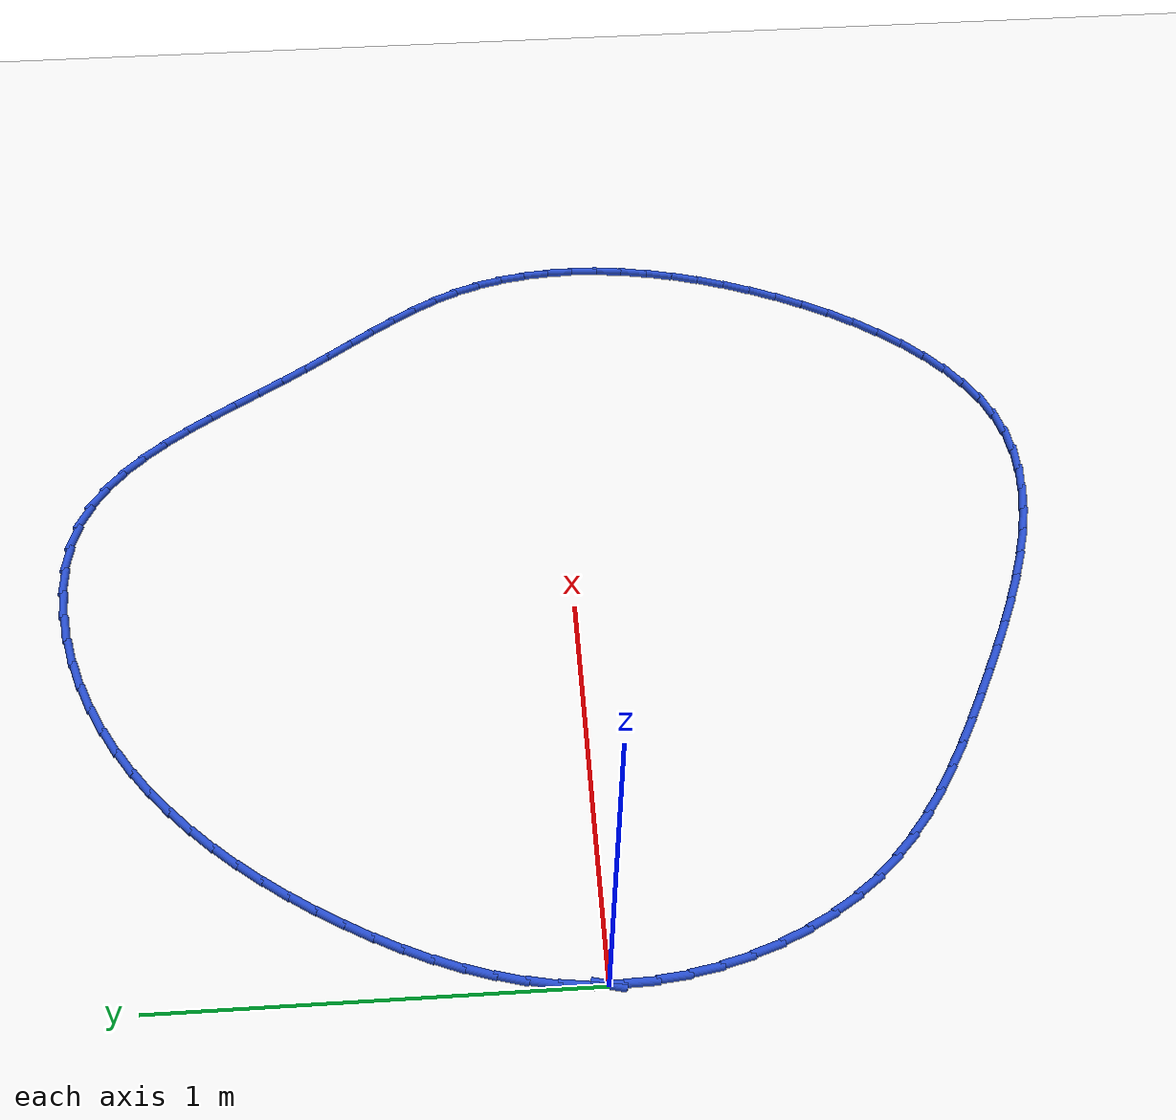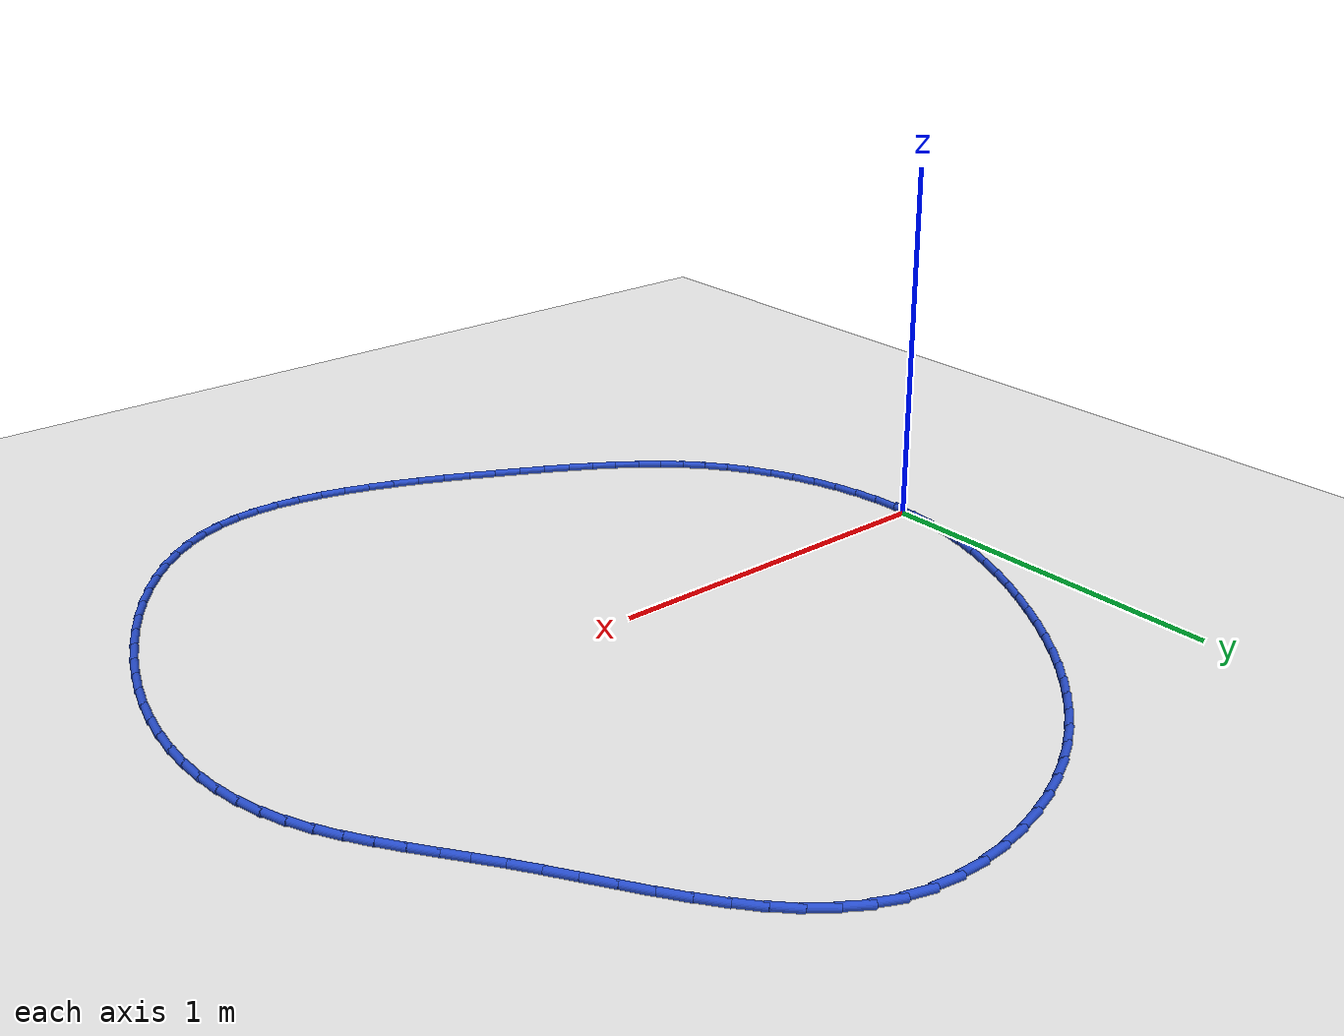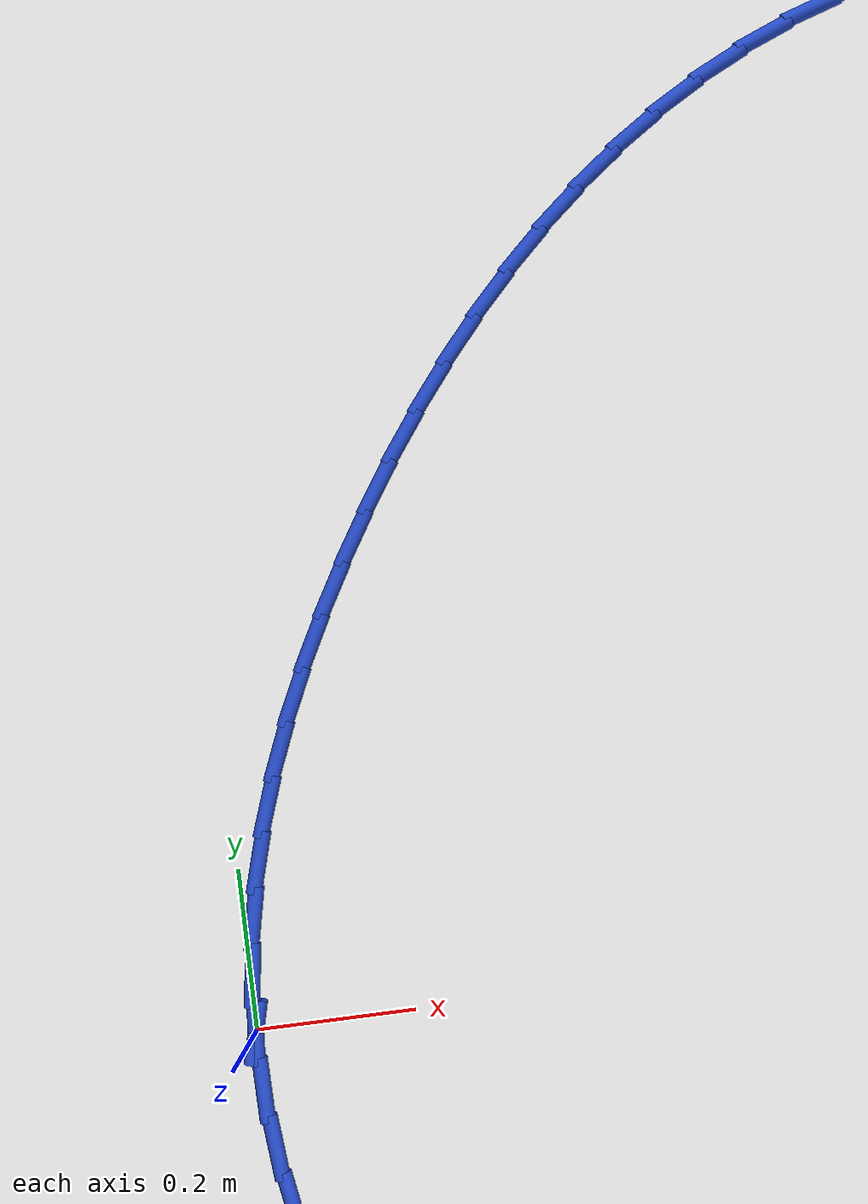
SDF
<sdf version="1.6">
 <world name="default">
  <light name="sun" type="directional">
   <pose>0 0 10 0 -0 0</pose>
   <diffuse>0.8 0.8 0.8 1</diffuse>
   <specular>0.2 0.2 0.2 1</specular>
   <attenuation>
    <range>1000</range>
    <constant>0.9</constant>
    <linear>0.01</linear>
    <quadratic>0.001</quadratic>
   </attenuation>
   <direction>-0.5 0.1 -0.9</direction>
  </light>
  <model name="ground_plane">
   <static>1</static>
   <link name="link">
    <collision name="collision">
     <geometry><plane><normal>0 0 1</normal><size>100 100</size></plane></geometry>
     <surface><friction><ode><mu>100</mu><mu2>50</mu2></ode></friction></surface>
    </collision>
    <visual name="visual">
     <cast_shadows>0</cast_shadows>
     <geometry><plane><normal>0 0 1</normal><size>100 100</size></plane></geometry>
     <material>
      <script><uri>file://media/materials/scripts/gazebo.material</uri><name>Gazebo/WhiteGlow</name></script>
     </material>
    </visual>
   </link>
  </model>
  <gravity>0 0 -9.8</gravity>
  <magnetic_field>6e-06 2.3e-05 -4.2e-05</magnetic_field>
  <atmosphere type="adiabatic"/>
  <physics name="default_physics" default="0" type="ode">
   <max_step_size>0.001</max_step_size>
   <real_time_factor>1</real_time_factor>
   <real_time_update_rate>1000</real_time_update_rate>
  </physics>
  <scene><ambient>0.4 0.4 0.4 1</ambient><background>0.7 0.7 0.7 1</background><shadows>1</shadows></scene>
  <spherical_coordinates>
   <surface_model>EARTH_WGS84</surface_model>
   <latitude_deg>0</latitude_deg>
   <longitude_deg>0</longitude_deg>
   <elevation>0</elevation>
   <heading_deg>0</heading_deg>
  </spherical_coordinates>
  <model name="line">
   <link name="link_0">
    <pose>3.469446951953614e-18 1.3877787807814457e-17 0.01 0 1.57 1.511084061415032</pose>
    <collision name="collision">
     <geometry><cylinder><radius>0.01</radius><length>0.08</length></cylinder></geometry>
    </collision>
    <visual name="visual">
     <material>
      <script><name>Gazebo/Blue</name><uri>file://media/materials/scripts/gazebo.material</uri></script>
     </material>
     <geometry><cylinder><radius>0.01</radius><length>0.08</length></cylinder></geometry>
    </visual>
   </link>
   <link name="link_1">
    <pose>0.00417876362778568 0.06989846865786205 0.01 0 1.57 1.4343686571540268</pose>
    <collision name="collision">
     <geometry><cylinder><radius>0.01</radius><length>0.08</length></cylinder></geometry>
    </collision>
    <visual name="visual">
     <material>
      <script><name>Gazebo/Blue</name><uri>file://media/materials/scripts/gazebo.material</uri></script>
     </material>
     <geometry><cylinder><radius>0.01</radius><length>0.08</length></cylinder></geometry>
    </visual>
   </link>
   <link name="link_2">
    <pose>0.013653687196727481 0.13891721309165903 0.01 0 1.57 1.3627356052847963</pose>
    <collision name="collision">
     <geometry><cylinder><radius>0.01</radius><length>0.08</length></cylinder></geometry>
    </collision>
    <visual name="visual">
     <material>
      <script><name>Gazebo/Blue</name><uri>file://media/materials/scripts/gazebo.material</uri></script>
     </material>
     <geometry><cylinder><radius>0.01</radius><length>0.08</length></cylinder></geometry>
    </visual>
   </link>
   <link name="link_3">
    <pose>0.028033385094663864 0.20703002641657176 0.01 0 1.57 1.296649267912865</pose>
    <collision name="collision">
     <geometry><cylinder><radius>0.01</radius><length>0.08</length></cylinder></geometry>
    </collision>
    <visual name="visual">
     <material>
      <script><name>Gazebo/Blue</name><uri>file://media/materials/scripts/gazebo.material</uri></script>
     </material>
     <geometry><cylinder><radius>0.01</radius><length>0.08</length></cylinder></geometry>
    </visual>
   </link>
   <link name="link_4">
    <pose>0.04692647170943334 0.2742107017477812 0.01 0 1.57 1.236312284340843</pose>
    <collision name="collision">
     <geometry><cylinder><radius>0.01</radius><length>0.08</length></cylinder></geometry>
    </collision>
    <visual name="visual">
     <material>
      <script><name>Gazebo/Blue</name><uri>file://media/materials/scripts/gazebo.material</uri></script>
     </material>
     <geometry><cylinder><radius>0.01</radius><length>0.08</length></cylinder></geometry>
    </visual>
   </link>
   <link name="link_5">
    <pose>0.06994156142887431 0.34043303220046844 0.01 0 1.57 1.1817224811516323</pose>
    <collision name="collision">
     <geometry><cylinder><radius>0.01</radius><length>0.08</length></cylinder></geometry>
    </collision>
    <visual name="visual">
     <material>
      <script><name>Gazebo/Blue</name><uri>file://media/materials/scripts/gazebo.material</uri></script>
     </material>
     <geometry><cylinder><radius>0.01</radius><length>0.08</length></cylinder></geometry>
    </visual>
   </link>
   <link name="link_6">
    <pose>0.09668726864082529 0.4056708108898142 0.01 0 1.57 1.1327339496732274</pose>
    <collision name="collision">
     <geometry><cylinder><radius>0.01</radius><length>0.08</length></cylinder></geometry>
    </collision>
    <visual name="visual">
     <material>
      <script><name>Gazebo/Blue</name><uri>file://media/materials/scripts/gazebo.material</uri></script>
     </material>
     <geometry><cylinder><radius>0.01</radius><length>0.08</length></cylinder></geometry>
    </visual>
   </link>
   <link name="link_7">
    <pose>0.12677220773312478 0.46989783093099957 0.01 0 1.57 1.0891125080459725</pose>
    <collision name="collision">
     <geometry><cylinder><radius>0.01</radius><length>0.08</length></cylinder></geometry>
    </collision>
    <visual name="visual">
     <material>
      <script><name>Gazebo/Blue</name><uri>file://media/materials/scripts/gazebo.material</uri></script>
     </material>
     <geometry><cylinder><radius>0.01</radius><length>0.08</length></cylinder></geometry>
    </visual>
   </link>
   <link name="link_8">
    <pose>0.15980499309361118 0.5330878854392054 0.01 0 1.57 1.0505790571320304</pose>
    <collision name="collision">
     <geometry><cylinder><radius>0.01</radius><length>0.08</length></cylinder></geometry>
    </collision>
    <visual name="visual">
     <material>
      <script><name>Gazebo/Blue</name><uri>file://media/materials/scripts/gazebo.material</uri></script>
     </material>
     <geometry><cylinder><radius>0.01</radius><length>0.08</length></cylinder></geometry>
    </visual>
   </link>
   <link name="link_9">
    <pose>0.19539436001189725 0.5952146976689618 0.01 0 1.57 1.0152923739904163</pose>
    <collision name="collision">
     <geometry><cylinder><radius>0.01</radius><length>0.08</length></cylinder></geometry>
    </collision>
    <visual name="visual">
     <material>
      <script><name>Gazebo/Blue</name><uri>file://media/materials/scripts/gazebo.material</uri></script>
     </material>
     <geometry><cylinder><radius>0.01</radius><length>0.08</length></cylinder></geometry>
    </visual>
   </link>
   <link name="link_10">
    <pose>0.23324575415033677 0.6561961087373366 0.01 0 1.57 0.9786473552544489</pose>
    <collision name="collision">
     <geometry><cylinder><radius>0.01</radius><length>0.08</length></cylinder></geometry>
    </collision>
    <visual name="visual">
     <material>
      <script><name>Gazebo/Blue</name><uri>file://media/materials/scripts/gazebo.material</uri></script>
     </material>
     <geometry><cylinder><radius>0.01</radius><length>0.08</length></cylinder></geometry>
    </visual>
   </link>
   <link name="link_11">
    <pose>0.2733353117666873 0.7157935466628496 0.01 0 1.57 0.939667050020173</pose>
    <collision name="collision">
     <geometry><cylinder><radius>0.01</radius><length>0.08</length></cylinder></geometry>
    </collision>
    <visual name="visual">
     <material>
      <script><name>Gazebo/Blue</name><uri>file://media/materials/scripts/gazebo.material</uri></script>
     </material>
     <geometry><cylinder><radius>0.01</radius><length>0.08</length></cylinder></geometry>
    </visual>
   </link>
   <link name="link_12">
    <pose>0.31568616856580994 0.7737412817818686 0.01 0 1.57 0.8981324397821481</pose>
    <collision name="collision">
     <geometry><cylinder><radius>0.01</radius><length>0.08</length></cylinder></geometry>
    </collision>
    <visual name="visual">
     <material>
      <script><name>Gazebo/Blue</name><uri>file://media/materials/scripts/gazebo.material</uri></script>
     </material>
     <geometry><cylinder><radius>0.01</radius><length>0.08</length></cylinder></geometry>
    </visual>
   </link>
   <link name="link_13">
    <pose>0.36032146025256584 0.8297735844307621 0.01 0 1.57 0.8538297281019032</pose>
    <collision name="collision">
     <geometry><cylinder><radius>0.01</radius><length>0.08</length></cylinder></geometry>
    </collision>
    <visual name="visual">
     <material>
      <script><name>Gazebo/Blue</name><uri>file://media/materials/scripts/gazebo.material</uri></script>
     </material>
     <geometry><cylinder><radius>0.01</radius><length>0.08</length></cylinder></geometry>
    </visual>
   </link>
   <link name="link_14">
    <pose>0.40726432253181605 0.8836247249458975 0.01 0 1.57 0.8065583571937343</pose>
    <collision name="collision">
     <geometry><cylinder><radius>0.01</radius><length>0.08</length></cylinder></geometry>
    </collision>
    <visual name="visual">
     <material>
      <script><name>Gazebo/Blue</name><uri>file://media/materials/scripts/gazebo.material</uri></script>
     </material>
     <geometry><cylinder><radius>0.01</radius><length>0.08</length></cylinder></geometry>
    </visual>
   </link>
   <link name="link_15">
    <pose>0.4565378911084212 0.9350289736636421 0.01 0 1.57 0.7561420447324255</pose>
    <collision name="collision">
     <geometry><cylinder><radius>0.01</radius><length>0.08</length></cylinder></geometry>
    </collision>
    <visual name="visual">
     <material>
      <script><name>Gazebo/Blue</name><uri>file://media/materials/scripts/gazebo.material</uri></script>
     </material>
     <geometry><cylinder><radius>0.01</radius><length>0.08</length></cylinder></geometry>
    </visual>
   </link>
   <link name="link_16">
    <pose>0.508165301687243 0.9837206009203652 0.01 0 1.57 0.7024431029713977</pose>
    <collision name="collision">
     <geometry><cylinder><radius>0.01</radius><length>0.08</length></cylinder></geometry>
    </collision>
    <visual name="visual">
     <material>
      <script><name>Gazebo/Blue</name><uri>file://media/materials/scripts/gazebo.material</uri></script>
     </material>
     <geometry><cylinder><radius>0.01</radius><length>0.08</length></cylinder></geometry>
    </visual>
   </link>
   <link name="link_17">
    <pose>0.5621696899731424 1.0294338770524336 0.01 0 1.57 0.6453799400016821</pose>
    <collision name="collision">
     <geometry><cylinder><radius>0.01</radius><length>0.08</length></cylinder></geometry>
    </collision>
    <visual name="visual">
     <material>
      <script><name>Gazebo/Blue</name><uri>file://media/materials/scripts/gazebo.material</uri></script>
     </material>
     <geometry><cylinder><radius>0.01</radius><length>0.08</length></cylinder></geometry>
    </visual>
   </link>
   <link name="link_18">
    <pose>0.6185741916709799 1.0719030723962155 0.01 0 1.57 0.5849470282513028</pose>
    <collision name="collision">
     <geometry><cylinder><radius>0.01</radius><length>0.08</length></cylinder></geometry>
    </collision>
    <visual name="visual">
     <material>
      <script><name>Gazebo/Blue</name><uri>file://media/materials/scripts/gazebo.material</uri></script>
     </material>
     <geometry><cylinder><radius>0.01</radius><length>0.08</length></cylinder></geometry>
    </visual>
   </link>
   <link name="link_19">
    <pose>0.6774019424856174 1.1108624572880792 0.01 0 1.57 0.5212357484276491</pose>
    <collision name="collision">
     <geometry><cylinder><radius>0.01</radius><length>0.08</length></cylinder></geometry>
    </collision>
    <visual name="visual">
     <material>
      <script><name>Gazebo/Blue</name><uri>file://media/materials/scripts/gazebo.material</uri></script>
     </material>
     <geometry><cylinder><radius>0.01</radius><length>0.08</length></cylinder></geometry>
    </visual>
   </link>
   <link name="link_20">
    <pose>0.7386760781219155 1.146046302064392 0.01 0 1.57 0.45445347102312716</pose>
    <collision name="collision">
     <geometry><cylinder><radius>0.01</radius><length>0.08</length></cylinder></geometry>
    </collision>
    <visual name="visual">
     <material>
      <script><name>Gazebo/Blue</name><uri>file://media/materials/scripts/gazebo.material</uri></script>
     </material>
     <geometry><cylinder><radius>0.01</radius><length>0.08</length></cylinder></geometry>
    </visual>
   </link>
   <link name="link_21">
    <pose>0.8024197342847352 1.1771888770615222 0.01 0 1.57 0.3849372717522027</pose>
    <collision name="collision">
     <geometry><cylinder><radius>0.01</radius><length>0.08</length></cylinder></geometry>
    </collision>
    <visual name="visual">
     <material>
      <script><name>Gazebo/Blue</name><uri>file://media/materials/scripts/gazebo.material</uri></script>
     </material>
     <geometry><cylinder><radius>0.01</radius><length>0.08</length></cylinder></geometry>
    </visual>
   </link>
   <link name="link_22">
    <pose>0.8686560466789379 1.2040244526158377 0.01 0 1.57 0.3131570007687954</pose>
    <collision name="collision">
     <geometry><cylinder><radius>0.01</radius><length>0.08</length></cylinder></geometry>
    </collision>
    <visual name="visual">
     <material>
      <script><name>Gazebo/Blue</name><uri>file://media/materials/scripts/gazebo.material</uri></script>
     </material>
     <geometry><cylinder><radius>0.01</radius><length>0.08</length></cylinder></geometry>
    </visual>
   </link>
   <link name="link_23">
    <pose>0.9374072086856999 1.2262869025206273 0.01 0 1.57 0.23890898584947062</pose>
    <collision name="collision">
     <geometry><cylinder><radius>0.01</radius><length>0.08</length></cylinder></geometry>
    </collision>
    <visual name="visual">
     <material>
      <script><name>Gazebo/Blue</name><uri>file://media/materials/scripts/gazebo.material</uri></script>
     </material>
     <geometry><cylinder><radius>0.01</radius><length>0.08</length></cylinder></geometry>
    </visual>
   </link>
   <link name="link_24">
    <pose>1.0083558107186514 1.243567190857446 0.01 0 1.57 0.15888528754189274</pose>
    <collision name="collision">
     <geometry><cylinder><radius>0.01</radius><length>0.08</length></cylinder></geometry>
    </collision>
    <visual name="visual">
     <material>
      <script><name>Gazebo/Blue</name><uri>file://media/materials/scripts/gazebo.material</uri></script>
     </material>
     <geometry><cylinder><radius>0.01</radius><length>0.08</length></cylinder></geometry>
    </visual>
   </link>
   <link name="link_25">
    <pose>1.0803427466862627 1.255102083963962 0.01 0 1.57 0.06920172810792971</pose>
    <collision name="collision">
     <geometry><cylinder><radius>0.01</radius><length>0.08</length></cylinder></geometry>
    </collision>
    <visual name="visual">
     <material>
      <script><name>Gazebo/Blue</name><uri>file://media/materials/scripts/gazebo.material</uri></script>
     </material>
     <geometry><cylinder><radius>0.01</radius><length>0.08</length></cylinder></geometry>
    </visual>
   </link>
   <link name="link_26">
    <pose>1.1520807533157063 1.2600744178309784 0.01 0 1.57 -0.034278977096813164</pose>
    <collision name="collision">
     <geometry><cylinder><radius>0.01</radius><length>0.08</length></cylinder></geometry>
    </collision>
    <visual name="visual">
     <material>
      <script><name>Gazebo/Blue</name><uri>file://media/materials/scripts/gazebo.material</uri></script>
     </material>
     <geometry><cylinder><radius>0.01</radius><length>0.08</length></cylinder></geometry>
    </visual>
   </link>
   <link name="link_27">
    <pose>1.2222825673341569 1.2576670284493008 0.01 0 1.57 -0.156103540561699</pose>
    <collision name="collision">
     <geometry><cylinder><radius>0.01</radius><length>0.08</length></cylinder></geometry>
    </collision>
    <visual name="visual">
     <material>
      <script><name>Gazebo/Blue</name><uri>file://media/materials/scripts/gazebo.material</uri></script>
     </material>
     <geometry><cylinder><radius>0.01</radius><length>0.08</length></cylinder></geometry>
    </visual>
   </link>
   <link name="link_28">
    <pose>1.2896609254687879 1.2470627518097326 0.01 0 1.57 -0.3006025174132289</pose>
    <collision name="collision">
     <geometry><cylinder><radius>0.01</radius><length>0.08</length></cylinder></geometry>
    </collision>
    <visual name="visual">
     <material>
      <script><name>Gazebo/Blue</name><uri>file://media/materials/scripts/gazebo.material</uri></script>
     </material>
     <geometry><cylinder><radius>0.01</radius><length>0.08</length></cylinder></geometry>
    </visual>
   </link>
   <link name="link_29">
    <pose>1.3529327249043754 1.2274487126263163 0.01 0 1.57 -0.4583424911510606</pose>
    <collision name="collision">
     <geometry><cylinder><radius>0.01</radius><length>0.08</length></cylinder></geometry>
    </collision>
    <visual name="visual">
     <material>
      <script><name>Gazebo/Blue</name><uri>file://media/materials/scripts/gazebo.material</uri></script>
     </material>
     <geometry><cylinder><radius>0.01</radius><length>0.08</length></cylinder></geometry>
    </visual>
   </link>
   <link name="link_30">
    <pose>1.4113911825551777 1.1986061231035565 0.01 0 1.57 -0.6010328738380628</pose>
    <collision name="collision">
     <geometry><cylinder><radius>0.01</radius><length>0.08</length></cylinder></geometry>
    </collision>
    <visual name="visual">
     <material>
      <script><name>Gazebo/Blue</name><uri>file://media/materials/scripts/gazebo.material</uri></script>
     </material>
     <geometry><cylinder><radius>0.01</radius><length>0.08</length></cylinder></geometry>
    </visual>
   </link>
   <link name="link_31">
    <pose>1.4654903408415325 1.1615128088473303 0.01 0 1.57 -0.7208626294772477</pose>
    <collision name="collision">
     <geometry><cylinder><radius>0.01</radius><length>0.08</length></cylinder></geometry>
    </collision>
    <visual name="visual">
     <material>
      <script><name>Gazebo/Blue</name><uri>file://media/materials/scripts/gazebo.material</uri></script>
     </material>
     <geometry><cylinder><radius>0.01</radius><length>0.08</length></cylinder></geometry>
    </visual>
   </link>
   <link name="link_32">
    <pose>1.5158235980211194 1.1172902475986985 0.01 0 1.57 -0.816905773715629</pose>
    <collision name="collision">
     <geometry><cylinder><radius>0.01</radius><length>0.08</length></cylinder></geometry>
    </collision>
    <visual name="visual">
     <material>
      <script><name>Gazebo/Blue</name><uri>file://media/materials/scripts/gazebo.material</uri></script>
     </material>
     <geometry><cylinder><radius>0.01</radius><length>0.08</length></cylinder></geometry>
    </visual>
   </link>
   <link name="link_33">
    <pose>1.5629843523516174 1.0670599170987194 0.01 0 1.57 -0.8906760391791265</pose>
    <collision name="collision">
     <geometry><cylinder><radius>0.01</radius><length>0.08</length></cylinder></geometry>
    </collision>
    <visual name="visual">
     <material>
      <script><name>Gazebo/Blue</name><uri>file://media/materials/scripts/gazebo.material</uri></script>
     </material>
     <geometry><cylinder><radius>0.01</radius><length>0.08</length></cylinder></geometry>
    </visual>
   </link>
   <link name="link_34">
    <pose>1.6075660020907063 1.0119432950884528 0.01 0 1.57 -0.9445252766408464</pose>
    <collision name="collision">
     <geometry><cylinder><radius>0.01</radius><length>0.08</length></cylinder></geometry>
    </collision>
    <visual name="visual">
     <material>
      <script><name>Gazebo/Blue</name><uri>file://media/materials/scripts/gazebo.material</uri></script>
     </material>
     <geometry><cylinder><radius>0.01</radius><length>0.08</length></cylinder></geometry>
    </visual>
   </link>
   <link name="link_35">
    <pose>1.6501619454960643 0.9530618593089574 0.01 0 1.57 -0.9806911005400326</pose>
    <collision name="collision">
     <geometry><cylinder><radius>0.01</radius><length>0.08</length></cylinder></geometry>
    </collision>
    <visual name="visual">
     <material>
      <script><name>Gazebo/Blue</name><uri>file://media/materials/scripts/gazebo.material</uri></script>
     </material>
     <geometry><cylinder><radius>0.01</radius><length>0.08</length></cylinder></geometry>
    </visual>
   </link>
   <link name="link_36">
    <pose>1.691365580825371 0.8915370875012928 0.01 0 1.57 -1.000865826889026</pose>
    <collision name="collision">
     <geometry><cylinder><radius>0.01</radius><length>0.08</length></cylinder></geometry>
    </collision>
    <visual name="visual">
     <material>
      <script><name>Gazebo/Blue</name><uri>file://media/materials/scripts/gazebo.material</uri></script>
     </material>
     <geometry><cylinder><radius>0.01</radius><length>0.08</length></cylinder></geometry>
    </visual>
   </link>
   <link name="link_37">
    <pose>1.7317703063363057 0.8284904574065177 0.01 0 1.57 -1.0060457629248984</pose>
    <collision name="collision">
     <geometry><cylinder><radius>0.01</radius><length>0.08</length></cylinder></geometry>
    </collision>
    <visual name="visual">
     <material>
      <script><name>Gazebo/Blue</name><uri>file://media/materials/scripts/gazebo.material</uri></script>
     </material>
     <geometry><cylinder><radius>0.01</radius><length>0.08</length></cylinder></geometry>
    </visual>
   </link>
   <link name="link_38">
    <pose>1.7719695202865475 0.7650434467656916 0.01 0 1.57 -0.9964943634268069</pose>
    <collision name="collision">
     <geometry><cylinder><radius>0.01</radius><length>0.08</length></cylinder></geometry>
    </collision>
    <visual name="visual">
     <material>
      <script><name>Gazebo/Blue</name><uri>file://media/materials/scripts/gazebo.material</uri></script>
     </material>
     <geometry><cylinder><radius>0.01</radius><length>0.08</length></cylinder></geometry>
    </visual>
   </link>
   <link name="link_39">
    <pose>1.8125566209337751 0.7023175333198733 0.01 0 1.57 -0.9739822241341468</pose>
    <collision name="collision">
     <geometry><cylinder><radius>0.01</radius><length>0.08</length></cylinder></geometry>
    </collision>
    <visual name="visual">
     <material>
      <script><name>Gazebo/Blue</name><uri>file://media/materials/scripts/gazebo.material</uri></script>
     </material>
     <geometry><cylinder><radius>0.01</radius><length>0.08</length></cylinder></geometry>
    </visual>
   </link>
   <link name="link_40">
    <pose>1.8540125869330306 0.6413053174828348 0.01 0 1.57 -0.956162034746657</pose>
    <collision name="collision">
     <geometry><cylinder><radius>0.01</radius><length>0.08</length></cylinder></geometry>
    </collision>
    <visual name="visual">
     <material>
      <script><name>Gazebo/Blue</name><uri>file://media/materials/scripts/gazebo.material</uri></script>
     </material>
     <geometry><cylinder><radius>0.01</radius><length>0.08</length></cylinder></geometry>
    </visual>
   </link>
   <link name="link_41">
    <pose>1.8959057164645463 0.5819531068733054 0.01 0 1.57 -0.9523111565258561</pose>
    <collision name="collision">
     <geometry><cylinder><radius>0.01</radius><length>0.08</length></cylinder></geometry>
    </collision>
    <visual name="visual">
     <material>
      <script><name>Gazebo/Blue</name><uri>file://media/materials/scripts/gazebo.material</uri></script>
     </material>
     <geometry><cylinder><radius>0.01</radius><length>0.08</length></cylinder></geometry>
    </visual>
   </link>
   <link name="link_42">
    <pose>1.937360872811086 0.5236988573362046 0.01 0 1.57 -0.9631709664485846</pose>
    <collision name="collision">
     <geometry><cylinder><radius>0.01</radius><length>0.08</length></cylinder></geometry>
    </collision>
    <visual name="visual">
     <material>
      <script><name>Gazebo/Blue</name><uri>file://media/materials/scripts/gazebo.material</uri></script>
     </material>
     <geometry><cylinder><radius>0.01</radius><length>0.08</length></cylinder></geometry>
    </visual>
   </link>
   <link name="link_43">
    <pose>1.9774999758352567 0.4659771503928098 0.01 0 1.57 -0.9895133980783068</pose>
    <collision name="collision">
     <geometry><cylinder><radius>0.01</radius><length>0.08</length></cylinder></geometry>
    </collision>
    <visual name="visual">
     <material>
      <script><name>Gazebo/Blue</name><uri>file://media/materials/scripts/gazebo.material</uri></script>
     </material>
     <geometry><cylinder><radius>0.01</radius><length>0.08</length></cylinder></geometry>
    </visual>
   </link>
   <link name="link_44">
    <pose>2.015444945399665 0.4082225675643989 0.01 0 1.57 -1.0321298069377305</pose>
    <collision name="collision">
     <geometry><cylinder><radius>0.01</radius><length>0.08</length></cylinder></geometry>
    </collision>
    <visual name="visual">
     <material>
      <script><name>Gazebo/Blue</name><uri>file://media/materials/scripts/gazebo.material</uri></script>
     </material>
     <geometry><cylinder><radius>0.01</radius><length>0.08</length></cylinder></geometry>
    </visual>
   </link>
   <link name="link_45">
    <pose>2.050317701366917 0.3498696903722497 0.01 0 1.57 -1.0916231442613042</pose>
    <collision name="collision">
     <geometry><cylinder><radius>0.01</radius><length>0.08</length></cylinder></geometry>
    </collision>
    <visual name="visual">
     <material>
      <script><name>Gazebo/Blue</name><uri>file://media/materials/scripts/gazebo.material</uri></script>
     </material>
     <geometry><cylinder><radius>0.01</radius><length>0.08</length></cylinder></geometry>
    </visual>
   </link>
   <link name="link_46">
    <pose>2.0812401635996203 0.29035310033763967 0.01 0 1.57 -1.1680301166812088</pose>
    <collision name="collision">
     <geometry><cylinder><radius>0.01</radius><length>0.08</length></cylinder></geometry>
    </collision>
    <visual name="visual">
     <material>
      <script><name>Gazebo/Blue</name><uri>file://media/materials/scripts/gazebo.material</uri></script>
     </material>
     <geometry><cylinder><radius>0.01</radius><length>0.08</length></cylinder></geometry>
    </visual>
   </link>
   <link name="link_47">
    <pose>2.1073343453927635 0.22910745176210726 0.01 0 1.57 -1.2563105932702014</pose>
    <collision name="collision">
     <geometry><cylinder><radius>0.01</radius><length>0.08</length></cylinder></geometry>
    </collision>
    <visual name="visual">
     <material>
      <script><name>Gazebo/Blue</name><uri>file://media/materials/scripts/gazebo.material</uri></script>
     </material>
     <geometry><cylinder><radius>0.01</radius><length>0.08</length></cylinder></geometry>
    </visual>
   </link>
   <link name="link_48">
    <pose>2.127946003803099 0.16574168679868145 0.01 0 1.57 -1.3425080166659205</pose>
    <collision name="collision">
     <geometry><cylinder><radius>0.01</radius><length>0.08</length></cylinder></geometry>
    </collision>
    <visual name="visual">
     <material>
      <script><name>Gazebo/Blue</name><uri>file://media/materials/scripts/gazebo.material</uri></script>
     </material>
     <geometry><cylinder><radius>0.01</radius><length>0.08</length></cylinder></geometry>
    </visual>
   </link>
   <link name="link_49">
    <pose>2.1431244291279654 0.10041277314527816 0.01 0 1.57 -1.4236831709314475</pose>
    <collision name="collision">
     <geometry><cylinder><radius>0.01</radius><length>0.08</length></cylinder></geometry>
    </collision>
    <visual name="visual">
     <material>
      <script><name>Gazebo/Blue</name><uri>file://media/materials/scripts/gazebo.material</uri></script>
     </material>
     <geometry><cylinder><radius>0.01</radius><length>0.08</length></cylinder></geometry>
    </visual>
   </link>
   <link name="link_50">
    <pose>2.153056836150053 0.03338511641017144 0.01 0 1.57 -1.4997292182807302</pose>
    <collision name="collision">
     <geometry><cylinder><radius>0.01</radius><length>0.08</length></cylinder></geometry>
    </collision>
    <visual name="visual">
     <material>
      <script><name>Gazebo/Blue</name><uri>file://media/materials/scripts/gazebo.material</uri></script>
     </material>
     <geometry><cylinder><radius>0.01</radius><length>0.08</length></cylinder></geometry>
    </visual>
   </link>
   <link name="link_51">
    <pose>2.157930439652048 -0.03507687779836494 0.01 0 1.57 -1.5707673923002796</pose>
    <collision name="collision">
     <geometry><cylinder><radius>0.01</radius><length>0.08</length></cylinder></geometry>
    </collision>
    <visual name="visual">
     <material>
      <script><name>Gazebo/Blue</name><uri>file://media/materials/scripts/gazebo.material</uri></script>
     </material>
     <geometry><cylinder><radius>0.01</radius><length>0.08</length></cylinder></geometry>
    </visual>
   </link>
   <link name="link_52">
    <pose>2.1579324544166387 -0.10470880387205729 0.01 0 1.57 1.5045123936800595</pose>
    <collision name="collision">
     <geometry><cylinder><radius>0.01</radius><length>0.08</length></cylinder></geometry>
    </collision>
    <visual name="visual">
     <material>
      <script><name>Gazebo/Blue</name><uri>file://media/materials/scripts/gazebo.material</uri></script>
     </material>
     <geometry><cylinder><radius>0.01</radius><length>0.08</length></cylinder></geometry>
    </visual>
   </link>
   <link name="link_53">
    <pose>2.153250095226513 -0.17524625620263184 0.01 0 1.57 1.4425396197530604</pose>
    <collision name="collision">
     <geometry><cylinder><radius>0.01</radius><length>0.08</length></cylinder></geometry>
    </collision>
    <visual name="visual">
     <material>
      <script><name>Gazebo/Blue</name><uri>file://media/materials/scripts/gazebo.material</uri></script>
     </material>
     <geometry><cylinder><radius>0.01</radius><length>0.08</length></cylinder></geometry>
    </visual>
   </link>
   <link name="link_54">
    <pose>2.144070576864358 -0.2464248291818149 0.01 0 1.57 1.3844650919945085</pose>
    <collision name="collision">
     <geometry><cylinder><radius>0.01</radius><length>0.08</length></cylinder></geometry>
    </collision>
    <visual name="visual">
     <material>
      <script><name>Gazebo/Blue</name><uri>file://media/materials/scripts/gazebo.material</uri></script>
     </material>
     <geometry><cylinder><radius>0.01</radius><length>0.08</length></cylinder></geometry>
    </visual>
   </link>
   <link name="link_55">
    <pose>2.130581114112864 -0.3179801172013328 0.01 0 1.57 1.3298232215669359</pose>
    <collision name="collision">
     <geometry><cylinder><radius>0.01</radius><length>0.08</length></cylinder></geometry>
    </collision>
    <visual name="visual">
     <material>
      <script><name>Gazebo/Blue</name><uri>file://media/materials/scripts/gazebo.material</uri></script>
     </material>
     <geometry><cylinder><radius>0.01</radius><length>0.08</length></cylinder></geometry>
    </visual>
   </link>
   <link name="link_56">
    <pose>2.112968921754716 -0.3896477146529116 0.01 0 1.57 1.278146188152217</pose>
    <collision name="collision">
     <geometry><cylinder><radius>0.01</radius><length>0.08</length></cylinder></geometry>
    </collision>
    <visual name="visual">
     <material>
      <script><name>Gazebo/Blue</name><uri>file://media/materials/scripts/gazebo.material</uri></script>
     </material>
     <geometry><cylinder><radius>0.01</radius><length>0.08</length></cylinder></geometry>
    </visual>
   </link>
   <link name="link_57">
    <pose>2.091421214572603 -0.46116321592827775 0.01 0 1.57 1.2289765369938856</pose>
    <collision name="collision">
     <geometry><cylinder><radius>0.01</radius><length>0.08</length></cylinder></geometry>
    </collision>
    <visual name="visual">
     <material>
      <script><name>Gazebo/Blue</name><uri>file://media/materials/scripts/gazebo.material</uri></script>
     </material>
     <geometry><cylinder><radius>0.01</radius><length>0.08</length></cylinder></geometry>
    </visual>
   </link>
   <link name="link_58">
    <pose>2.066125207349214 -0.5322622154191567 0.01 0 1.57 1.1818732643133183</pose>
    <collision name="collision">
     <geometry><cylinder><radius>0.01</radius><length>0.08</length></cylinder></geometry>
    </collision>
    <visual name="visual">
     <material>
      <script><name>Gazebo/Blue</name><uri>file://media/materials/scripts/gazebo.material</uri></script>
     </material>
     <geometry><cylinder><radius>0.01</radius><length>0.08</length></cylinder></geometry>
    </visual>
   </link>
   <link name="link_59">
    <pose>2.037268114867235 -0.6026803075172763 0.01 0 1.57 1.1363251281160174</pose>
    <collision name="collision">
     <geometry><cylinder><radius>0.01</radius><length>0.08</length></cylinder></geometry>
    </collision>
    <visual name="visual">
     <material>
      <script><name>Gazebo/Blue</name><uri>file://media/materials/scripts/gazebo.material</uri></script>
     </material>
     <geometry><cylinder><radius>0.01</radius><length>0.08</length></cylinder></geometry>
    </visual>
   </link>
   <link name="link_60">
    <pose>2.00503495396682 -0.6721417667935317 0.01 0 1.57 1.089963207736784</pose>
    <collision name="collision">
     <geometry><cylinder><radius>0.01</radius><length>0.08</length></cylinder></geometry>
    </collision>
    <visual name="visual">
     <material>
      <script><name>Gazebo/Blue</name><uri>file://media/materials/scripts/gazebo.material</uri></script>
     </material>
     <geometry><cylinder><radius>0.01</radius><length>0.08</length></cylinder></geometry>
    </visual>
   </link>
   <link name="link_61">
    <pose>1.9695649340780501 -0.7401349509709726 0.01 0 1.57 1.040079219274024</pose>
    <collision name="collision">
     <geometry><cylinder><radius>0.01</radius><length>0.08</length></cylinder></geometry>
    </collision>
    <visual name="visual">
     <material>
      <script><name>Gazebo/Blue</name><uri>file://media/materials/scripts/gazebo.material</uri></script>
     </material>
     <geometry><cylinder><radius>0.01</radius><length>0.08</length></cylinder></geometry>
    </visual>
   </link>
   <link name="link_62">
    <pose>1.9309539479790394 -0.8059251288013255 0.01 0 1.57 0.9854205683408256</pose>
    <collision name="collision">
     <geometry><cylinder><radius>0.01</radius><length>0.08</length></cylinder></geometry>
    </collision>
    <visual name="visual">
     <material>
      <script><name>Gazebo/Blue</name><uri>file://media/materials/scripts/gazebo.material</uri></script>
     </material>
     <geometry><cylinder><radius>0.01</radius><length>0.08</length></cylinder></geometry>
    </visual>
   </link>
   <link name="link_63">
    <pose>1.8892961891451643 -0.8687688173049951 0.01 0 1.57 0.9246492134187851</pose>
    <collision name="collision">
     <geometry><cylinder><radius>0.01</radius><length>0.08</length></cylinder></geometry>
    </collision>
    <visual name="visual">
     <material>
      <script><name>Gazebo/Blue</name><uri>file://media/materials/scripts/gazebo.material</uri></script>
     </material>
     <geometry><cylinder><radius>0.01</radius><length>0.08</length></cylinder></geometry>
    </visual>
   </link>
   <link name="link_64">
    <pose>1.8446858510517996 -0.9279225335023851 0.01 0 1.57 0.8562414321282941</pose>
    <collision name="collision">
     <geometry><cylinder><radius>0.01</radius><length>0.08</length></cylinder></geometry>
    </collision>
    <visual name="visual">
     <material>
      <script><name>Gazebo/Blue</name><uri>file://media/materials/scripts/gazebo.material</uri></script>
     </material>
     <geometry><cylinder><radius>0.01</radius><length>0.08</length></cylinder></geometry>
    </visual>
   </link>
   <link name="link_65">
    <pose>1.7972171271743218 -0.9826427944138998 0.01 0 1.57 0.7784868730089338</pose>
    <collision name="collision">
     <geometry><cylinder><radius>0.01</radius><length>0.08</length></cylinder></geometry>
    </collision>
    <visual name="visual">
     <material>
      <script><name>Gazebo/Blue</name><uri>file://media/materials/scripts/gazebo.material</uri></script>
     </material>
     <geometry><cylinder><radius>0.01</radius><length>0.08</length></cylinder></geometry>
    </visual>
   </link>
   <link name="link_66">
    <pose>1.7469842109881069 -1.032186117059943 0.01 0 1.57 0.6895525136049946</pose>
    <collision name="collision">
     <geometry><cylinder><radius>0.01</radius><length>0.08</length></cylinder></geometry>
    </collision>
    <visual name="visual">
     <material>
      <script><name>Gazebo/Blue</name><uri>file://media/materials/scripts/gazebo.material</uri></script>
     </material>
     <geometry><cylinder><radius>0.01</radius><length>0.08</length></cylinder></geometry>
    </visual>
   </link>
   <link name="link_67">
    <pose>1.6940812959685296 -1.0758090184609188 0.01 0 1.57 0.5876678923668099</pose>
    <collision name="collision">
     <geometry><cylinder><radius>0.01</radius><length>0.08</length></cylinder></geometry>
    </collision>
    <visual name="visual">
     <material>
      <script><name>Gazebo/Blue</name><uri>file://media/materials/scripts/gazebo.material</uri></script>
     </material>
     <geometry><cylinder><radius>0.01</radius><length>0.08</length></cylinder></geometry>
    </visual>
   </link>
   <link name="link_68">
    <pose>1.6386025755909666 -1.112768015637232 0.01 0 1.57 0.47150384260038825</pose>
    <collision name="collision">
     <geometry><cylinder><radius>0.01</radius><length>0.08</length></cylinder></geometry>
    </collision>
    <visual name="visual">
     <material>
      <script><name>Gazebo/Blue</name><uri>file://media/materials/scripts/gazebo.material</uri></script>
     </material>
     <geometry><cylinder><radius>0.01</radius><length>0.08</length></cylinder></geometry>
    </visual>
   </link>
   <link name="link_69">
    <pose>1.580642243330794 -1.142319625609286 0.01 0 1.57 0.34087079543600346</pose>
    <collision name="collision">
     <geometry><cylinder><radius>0.01</radius><length>0.08</length></cylinder></geometry>
    </collision>
    <visual name="visual">
     <material>
      <script><name>Gazebo/Blue</name><uri>file://media/materials/scripts/gazebo.material</uri></script>
     </material>
     <geometry><cylinder><radius>0.01</radius><length>0.08</length></cylinder></geometry>
    </visual>
   </link>
   <link name="link_70">
    <pose>1.5202952497530877 -1.1637257263919045 0.01 0 1.57 0.20495640258855774</pose>
    <collision name="collision">
     <geometry><cylinder><radius>0.01</radius><length>0.08</length></cylinder></geometry>
    </collision>
    <visual name="visual">
     <material>
      <script><name>Gazebo/Blue</name><uri>file://media/materials/scripts/gazebo.material</uri></script>
     </material>
     <geometry><cylinder><radius>0.01</radius><length>0.08</length></cylinder></geometry>
    </visual>
   </link>
   <link name="link_71">
    <pose>1.4577249466811006 -1.1767325491260237 0.01 0 1.57 0.08069676858796472</pose>
    <collision name="collision">
     <geometry><cylinder><radius>0.01</radius><length>0.08</length></cylinder></geometry>
    </collision>
    <visual name="visual">
     <material>
      <script><name>Gazebo/Blue</name><uri>file://media/materials/scripts/gazebo.material</uri></script>
     </material>
     <geometry><cylinder><radius>0.01</radius><length>0.08</length></cylinder></geometry>
    </visual>
   </link>
   <link name="link_72">
    <pose>1.3932165843803723 -1.181949494624681 0.01 0 1.57 -0.028328378349928626</pose>
    <collision name="collision">
     <geometry><cylinder><radius>0.01</radius><length>0.08</length></cylinder></geometry>
    </collision>
    <visual name="visual">
     <material>
      <script><name>Gazebo/Blue</name><uri>file://media/materials/scripts/gazebo.material</uri></script>
     </material>
     <geometry><cylinder><radius>0.01</radius><length>0.08</length></cylinder></geometry>
    </visual>
   </link>
   <link name="link_73">
    <pose>1.327068002687008 -1.1800751111526167 0.01 0 1.57 -0.12188571731074588</pose>
    <collision name="collision">
     <geometry><cylinder><radius>0.01</radius><length>0.08</length></cylinder></geometry>
    </collision>
    <visual name="visual">
     <material>
      <script><name>Gazebo/Blue</name><uri>file://media/materials/scripts/gazebo.material</uri></script>
     </material>
     <geometry><cylinder><radius>0.01</radius><length>0.08</length></cylinder></geometry>
    </visual>
   </link>
   <link name="link_74">
    <pose>1.2595770414371141 -1.1718079469745717 0.01 0 1.57 -0.20096072543848295</pose>
    <collision name="collision">
     <geometry><cylinder><radius>0.01</radius><length>0.08</length></cylinder></geometry>
    </collision>
    <visual name="visual">
     <material>
      <script><name>Gazebo/Blue</name><uri>file://media/materials/scripts/gazebo.material</uri></script>
     </material>
     <geometry><cylinder><radius>0.01</radius><length>0.08</length></cylinder></geometry>
    </visual>
   </link>
   <link name="link_75">
    <pose>1.1910415404667964 -1.1578465503552875 0.01 0 1.57 -0.2670839251626776</pose>
    <collision name="collision">
     <geometry><cylinder><radius>0.01</radius><length>0.08</length></cylinder></geometry>
    </collision>
    <visual name="visual">
     <material>
      <script><name>Gazebo/Blue</name><uri>file://media/materials/scripts/gazebo.material</uri></script>
     </material>
     <geometry><cylinder><radius>0.01</radius><length>0.08</length></cylinder></geometry>
    </visual>
   </link>
   <link name="link_76">
    <pose>1.1217593396121597 -1.1388894695595038 0.01 0 1.57 -0.32188645275326044</pose>
    <collision name="collision">
     <geometry><cylinder><radius>0.01</radius><length>0.08</length></cylinder></geometry>
    </collision>
    <visual name="visual">
     <material>
      <script><name>Gazebo/Blue</name><uri>file://media/materials/scripts/gazebo.material</uri></script>
     </material>
     <geometry><cylinder><radius>0.01</radius><length>0.08</length></cylinder></geometry>
    </visual>
   </link>
   <link name="link_77">
    <pose>1.0520282787093103 -1.1156352528519622 0.01 0 1.57 -0.36686316027787014</pose>
    <collision name="collision">
     <geometry><cylinder><radius>0.01</radius><length>0.08</length></cylinder></geometry>
    </collision>
    <visual name="visual">
     <material>
      <script><name>Gazebo/Blue</name><uri>file://media/materials/scripts/gazebo.material</uri></script>
     </material>
     <geometry><cylinder><radius>0.01</radius><length>0.08</length></cylinder></geometry>
    </visual>
   </link>
   <link name="link_78">
    <pose>0.9821461975943531 -1.0887824484974031 0.01 0 1.57 -0.4032709535778674</pose>
    <collision name="collision">
     <geometry><cylinder><radius>0.01</radius><length>0.08</length></cylinder></geometry>
    </collision>
    <visual name="visual">
     <material>
      <script><name>Gazebo/Blue</name><uri>file://media/materials/scripts/gazebo.material</uri></script>
     </material>
     <geometry><cylinder><radius>0.01</radius><length>0.08</length></cylinder></geometry>
    </visual>
   </link>
   <link name="link_79">
    <pose>0.9124109361033942 -1.0590296047605676 0.01 0 1.57 -0.4320990727022995</pose>
    <collision name="collision">
     <geometry><cylinder><radius>0.01</radius><length>0.08</length></cylinder></geometry>
    </collision>
    <visual name="visual">
     <material>
      <script><name>Gazebo/Blue</name><uri>file://media/materials/scripts/gazebo.material</uri></script>
     </material>
     <geometry><cylinder><radius>0.01</radius><length>0.08</length></cylinder></geometry>
    </visual>
   </link>
   <link name="link_80">
    <pose>0.8431203340725387 -1.027075269906196 0.01 0 1.57 -0.4540699836092928</pose>
    <collision name="collision">
     <geometry><cylinder><radius>0.01</radius><length>0.08</length></cylinder></geometry>
    </collision>
    <visual name="visual">
     <material>
      <script><name>Gazebo/Blue</name><uri>file://media/materials/scripts/gazebo.material</uri></script>
     </material>
     <geometry><cylinder><radius>0.01</radius><length>0.08</length></cylinder></geometry>
    </visual>
   </link>
   <link name="link_81">
    <pose>0.774572231337893 -0.99361799219903 0.01 0 1.57 -0.4696470513732815</pose>
    <collision name="collision">
     <geometry><cylinder><radius>0.01</radius><length>0.08</length></cylinder></geometry>
    </collision>
    <visual name="visual">
     <material>
      <script><name>Gazebo/Blue</name><uri>file://media/materials/scripts/gazebo.material</uri></script>
     </material>
     <geometry><cylinder><radius>0.01</radius><length>0.08</length></cylinder></geometry>
    </visual>
   </link>
   <link name="link_82">
    <pose>0.707064467735562 -0.9593563199038098 0.01 0 1.57 -0.48008889689646833</pose>
    <collision name="collision">
     <geometry><cylinder><radius>0.01</radius><length>0.08</length></cylinder></geometry>
    </collision>
    <visual name="visual">
     <material>
      <script><name>Gazebo/Blue</name><uri>file://media/materials/scripts/gazebo.material</uri></script>
     </material>
     <geometry><cylinder><radius>0.01</radius><length>0.08</length></cylinder></geometry>
    </visual>
   </link>
   <link name="link_83">
    <pose>0.640895292692674 -0.9249004529497307 0.01 0 1.57 -0.49442029555267863</pose>
    <collision name="collision">
     <geometry><cylinder><radius>0.01</radius><length>0.08</length></cylinder></geometry>
    </collision>
    <visual name="visual">
     <material>
      <script><name>Gazebo/Blue</name><uri>file://media/materials/scripts/gazebo.material</uri></script>
     </material>
     <geometry><cylinder><radius>0.01</radius><length>0.08</length></cylinder></geometry>
    </visual>
   </link>
   <link name="link_84">
    <pose>0.5763664157006587 -0.8901142591806768 0.01 0 1.57 -0.5175139014002098</pose>
    <collision name="collision">
     <geometry><cylinder><radius>0.01</radius><length>0.08</length></cylinder></geometry>
    </collision>
    <visual name="visual">
     <material>
      <script><name>Gazebo/Blue</name><uri>file://media/materials/scripts/gazebo.material</uri></script>
     </material>
     <geometry><cylinder><radius>0.01</radius><length>0.08</length></cylinder></geometry>
    </visual>
   </link>
   <link name="link_85">
    <pose>0.5137812843104693 -0.854486708902092 0.01 0 1.57 -0.5498707296150772</pose>
    <collision name="collision">
     <geometry><cylinder><radius>0.01</radius><length>0.08</length></cylinder></geometry>
    </collision>
    <visual name="visual">
     <material>
      <script><name>Gazebo/Blue</name><uri>file://media/materials/scripts/gazebo.material</uri></script>
     </material>
     <geometry><cylinder><radius>0.01</radius><length>0.08</length></cylinder></geometry>
    </visual>
   </link>
   <link name="link_86">
    <pose>0.45344335918830064 -0.8175039434764536 0.01 0 1.57 -0.5919099362796243</pose>
    <collision name="collision">
     <geometry><cylinder><radius>0.01</radius><length>0.08</length></cylinder></geometry>
    </collision>
    <visual name="visual">
     <material>
      <script><name>Gazebo/Blue</name><uri>file://media/materials/scripts/gazebo.material</uri></script>
     </material>
     <geometry><cylinder><radius>0.01</radius><length>0.08</length></cylinder></geometry>
    </visual>
   </link>
   <link name="link_87">
    <pose>0.39565610100034676 -0.778652104266239 0.01 0 1.57 -0.6439078641082796</pose>
    <collision name="collision">
     <geometry><cylinder><radius>0.01</radius><length>0.08</length></cylinder></geometry>
    </collision>
    <visual name="visual">
     <material>
      <script><name>Gazebo/Blue</name><uri>file://media/materials/scripts/gazebo.material</uri></script>
     </material>
     <geometry><cylinder><radius>0.01</radius><length>0.08</length></cylinder></geometry>
    </visual>
   </link>
   <link name="link_88">
    <pose>0.340722970412802 -0.7374173326339255 0.01 0 1.57 -0.7058643772183751</pose>
    <collision name="collision">
     <geometry><cylinder><radius>0.01</radius><length>0.08</length></cylinder></geometry>
    </collision>
    <visual name="visual">
     <material>
      <script><name>Gazebo/Blue</name><uri>file://media/materials/scripts/gazebo.material</uri></script>
     </material>
     <geometry><cylinder><radius>0.01</radius><length>0.08</length></cylinder></geometry>
    </visual>
   </link>
   <link name="link_89">
    <pose>0.28894742809186047 -0.6932857699419903 0.01 0 1.57 -0.7773417182682855</pose>
    <collision name="collision">
     <geometry><cylinder><radius>0.01</radius><length>0.08</length></cylinder></geometry>
    </collision>
    <visual name="visual">
     <material>
      <script><name>Gazebo/Blue</name><uri>file://media/materials/scripts/gazebo.material</uri></script>
     </material>
     <geometry><cylinder><radius>0.01</radius><length>0.08</length></cylinder></geometry>
    </visual>
   </link>
   <link name="link_90">
    <pose>0.24063293470371666 -0.6457435575529115 0.01 0 1.57 -0.8573107513063556</pose>
    <collision name="collision">
     <geometry><cylinder><radius>0.01</radius><length>0.08</length></cylinder></geometry>
    </collision>
    <visual name="visual">
     <material>
      <script><name>Gazebo/Blue</name><uri>file://media/materials/scripts/gazebo.material</uri></script>
     </material>
     <geometry><cylinder><radius>0.01</radius><length>0.08</length></cylinder></geometry>
    </visual>
   </link>
   <link name="link_91">
    <pose>0.1960829509145647 -0.5942768368291658 0.01 0 1.57 -0.9428207248343319</pose>
    <collision name="collision">
     <geometry><cylinder><radius>0.01</radius><length>0.08</length></cylinder></geometry>
    </collision>
    <visual name="visual">
     <material>
      <script><name>Gazebo/Blue</name><uri>file://media/materials/scripts/gazebo.material</uri></script>
     </material>
     <geometry><cylinder><radius>0.01</radius><length>0.08</length></cylinder></geometry>
    </visual>
   </link>
   <link name="link_92">
    <pose>0.15558674371728648 -0.5384983745928863 0.01 0 1.57 -1.0256397334388185</pose>
    <collision name="collision">
     <geometry><cylinder><radius>0.01</radius><length>0.08</length></cylinder></geometry>
    </collision>
    <visual name="visual">
     <material>
      <script><name>Gazebo/Blue</name><uri>file://media/materials/scripts/gazebo.material</uri></script>
     </material>
     <geometry><cylinder><radius>0.01</radius><length>0.08</length></cylinder></geometry>
    </visual>
   </link>
   <link name="link_93">
    <pose>0.11935183246480888 -0.4787502296723823 0.01 0 1.57 -1.1041404084924133</pose>
    <collision name="collision">
     <geometry><cylinder><radius>0.01</radius><length>0.08</length></cylinder></geometry>
    </collision>
    <visual name="visual">
     <material>
      <script><name>Gazebo/Blue</name><uri>file://media/materials/scripts/gazebo.material</uri></script>
     </material>
     <geometry><cylinder><radius>0.01</radius><length>0.08</length></cylinder></geometry>
    </visual>
   </link>
   <link name="link_94">
    <pose>0.08755653030613093 -0.4156350170547372 0.01 0 1.57 -1.1795323543084848</pose>
    <collision name="collision">
     <geometry><cylinder><radius>0.01</radius><length>0.08</length></cylinder></geometry>
    </collision>
    <visual name="visual">
     <material>
      <script><name>Gazebo/Blue</name><uri>file://media/materials/scripts/gazebo.material</uri></script>
     </material>
     <geometry><cylinder><radius>0.01</radius><length>0.08</length></cylinder></geometry>
    </visual>
   </link>
   <link name="link_95">
    <pose>0.06037911387832665 -0.34975567745943476 0.01 0 1.57 -1.2530049237339433</pose>
    <collision name="collision">
     <geometry><cylinder><radius>0.01</radius><length>0.08</length></cylinder></geometry>
    </collision>
    <visual name="visual">
     <material>
      <script><name>Gazebo/Blue</name><uri>file://media/materials/scripts/gazebo.material</uri></script>
     </material>
     <geometry><cylinder><radius>0.01</radius><length>0.08</length></cylinder></geometry>
    </visual>
   </link>
   <link name="link_96">
    <pose>0.03799785981847021 -0.28171515160595967 0.01 0 1.57 -1.3257213531743317</pose>
    <collision name="collision">
     <geometry><cylinder><radius>0.01</radius><length>0.08</length></cylinder></geometry>
    </collision>
    <visual name="visual">
     <material>
      <script><name>Gazebo/Blue</name><uri>file://media/materials/scripts/gazebo.material</uri></script>
     </material>
     <geometry><cylinder><radius>0.01</radius><length>0.08</length></cylinder></geometry>
    </visual>
   </link>
   <link name="link_97">
    <pose>0.020591044763635175 -0.2121163802137943 0.01 0 1.57 -1.398828043205132</pose>
    <collision name="collision">
     <geometry><cylinder><radius>0.01</radius><length>0.08</length></cylinder></geometry>
    </collision>
    <visual name="visual">
     <material>
      <script><name>Gazebo/Blue</name><uri>file://media/materials/scripts/gazebo.material</uri></script>
     </material>
     <geometry><cylinder><radius>0.01</radius><length>0.08</length></cylinder></geometry>
    </visual>
   </link>
   <link name="link_98">
    <pose>0.008336945350895799 -0.14156230400242337 0.01 0 1.57 -1.4734676116541816</pose>
    <collision name="collision">
     <geometry><cylinder><radius>0.01</radius><length>0.08</length></cylinder></geometry>
    </collision>
    <visual name="visual">
     <material>
      <script><name>Gazebo/Blue</name><uri>file://media/materials/scripts/gazebo.material</uri></script>
     </material>
     <geometry><cylinder><radius>0.01</radius><length>0.08</length></cylinder></geometry>
    </visual>
   </link>
   <link name="link_99">
    <pose>0.001413838217326064 -0.07065586369133059 0.01 0 1.57 -1.5507887933131326</pose>
    <collision name="collision">
     <geometry><cylinder><radius>0.01</radius><length>0.08</length></cylinder></geometry>
    </collision>
    <visual name="visual">
     <material>
      <script><name>Gazebo/Blue</name><uri>file://media/materials/scripts/gazebo.material</uri></script>
     </material>
     <geometry><cylinder><radius>0.01</radius><length>0.08</length></cylinder></geometry>
    </visual>
   </link>
   <link name="link_100">
    <pose>1.0408340855860843e-17 4.163336342344337e-17 0.01 0 1.57 1.3258176636680326</pose>
    <collision name="collision">
     <geometry><cylinder><radius>0.01</radius><length>0.08</length></cylinder></geometry>
    </collision>
    <visual name="visual">
     <material>
      <script><name>Gazebo/Blue</name><uri>file://media/materials/scripts/gazebo.material</uri></script>
     </material>
     <geometry><cylinder><radius>0.01</radius><length>0.08</length></cylinder></geometry>
    </visual>
   </link>
  </model>
 </world>
</sdf>
